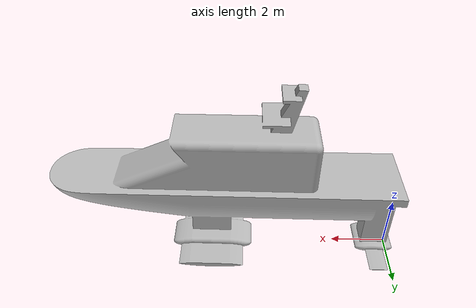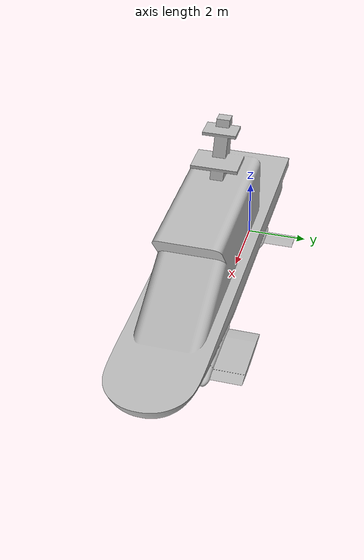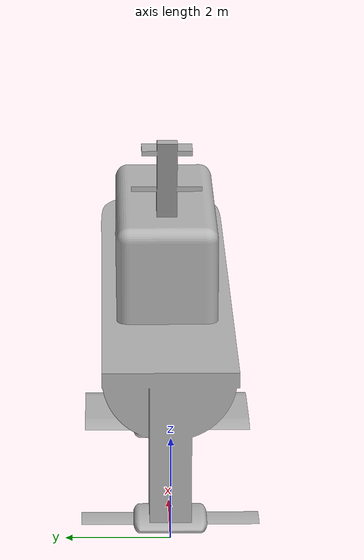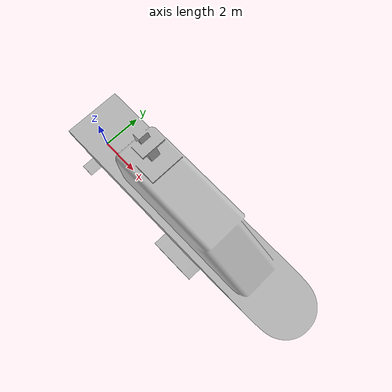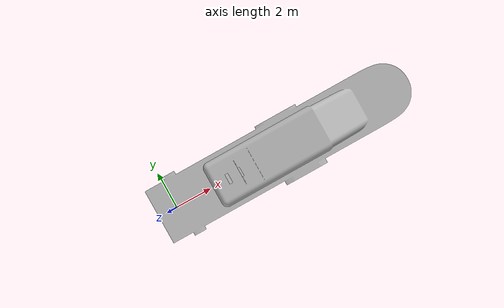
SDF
<?xml version="1.0"?>
<sdf version="1.9">
  <model name="hydrofoil_vessel">
    <static>true</static>
    <link name="base_link">
      <visual name="visual">
        <geometry>
          <mesh>
            <uri>meshes/hydrofoil.obj</uri>
            <scale>1 1 1</scale>
          </mesh>
        </geometry>
      </visual>
      <collision name="collision">
        <pose>6.15 -0.025 3.375 0 0 0</pose>
        <geometry>
          <box>
            <size>12.7 3.45 6.85</size>
          </box>
        </geometry>
      </collision>
    </link>
  </model>
</sdf>
